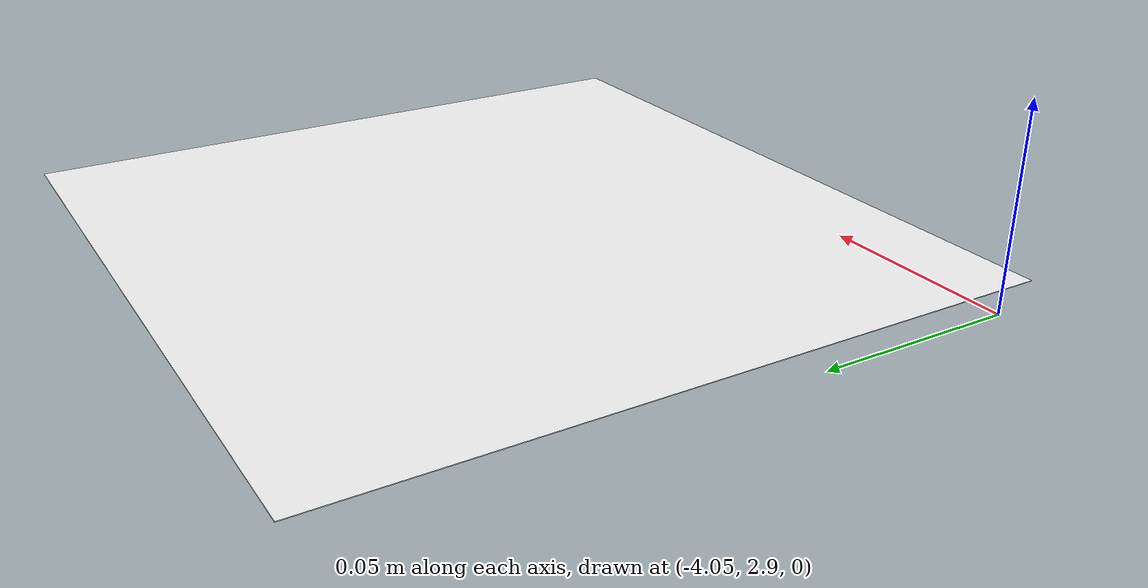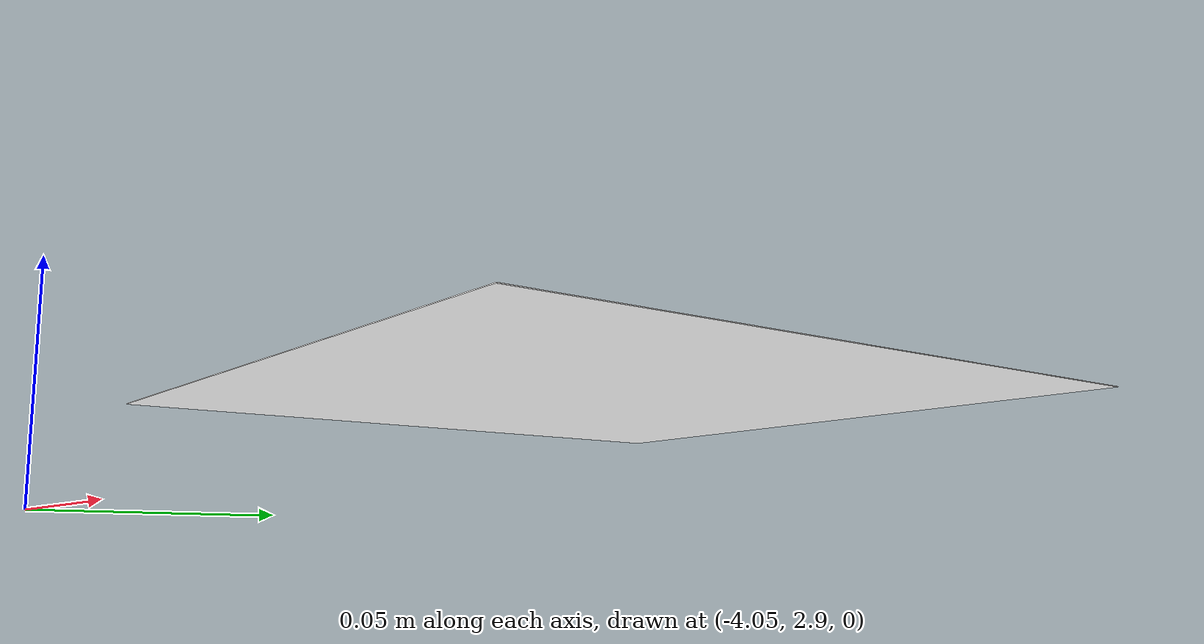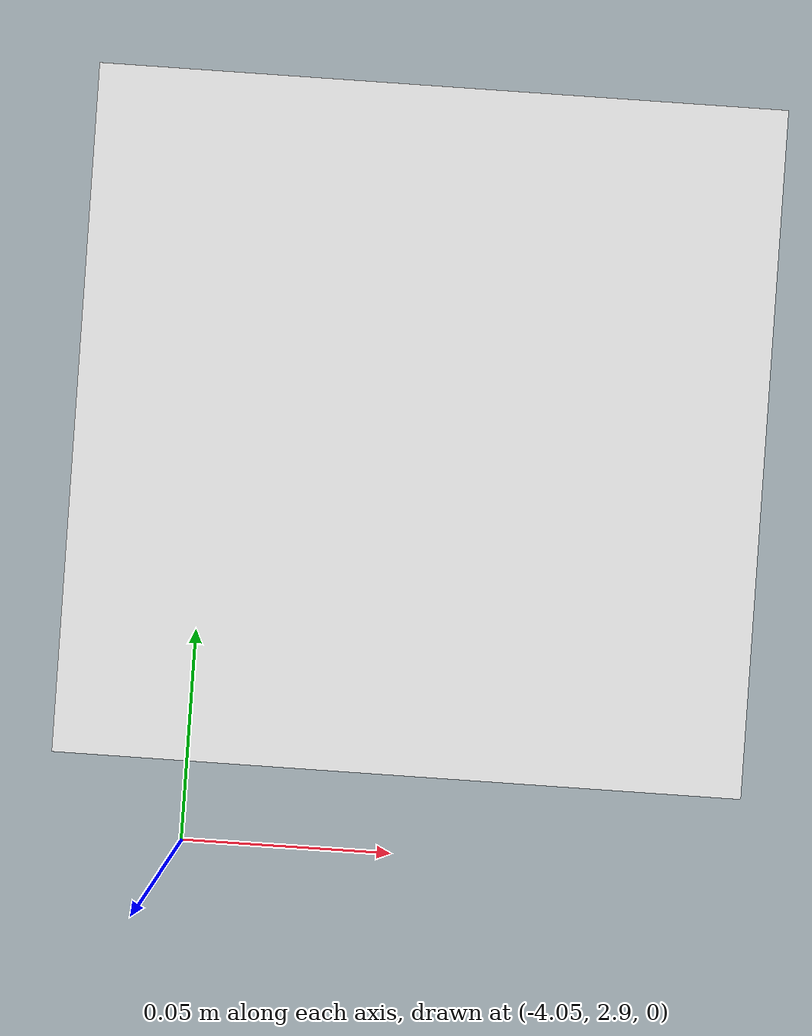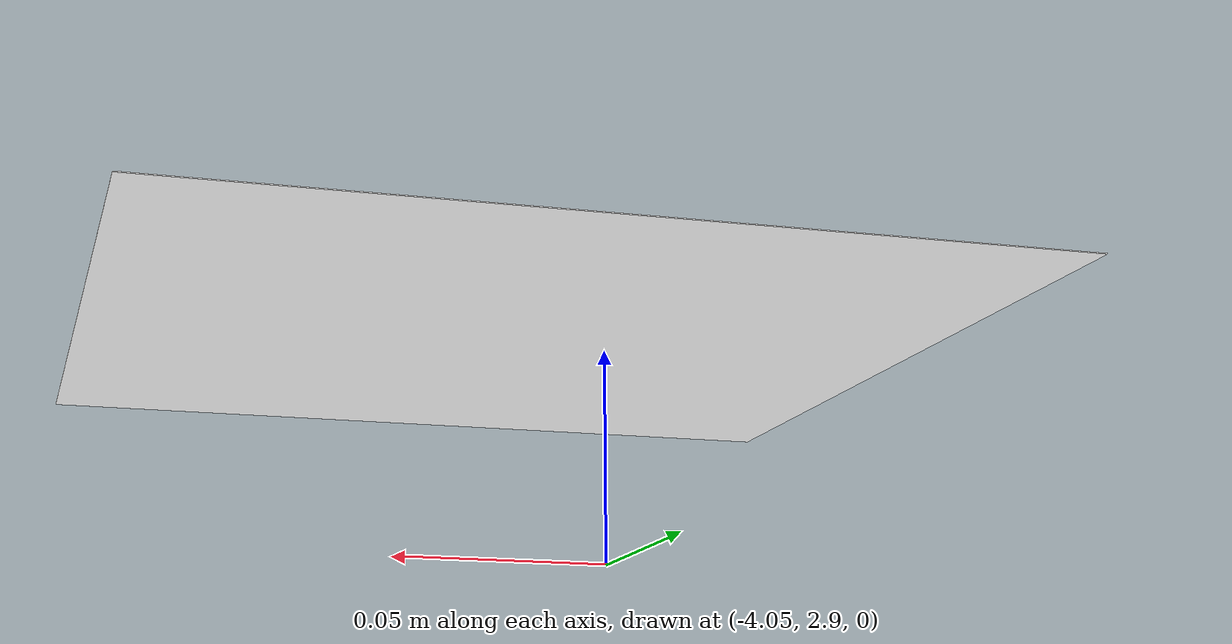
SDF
<?xml version="1.0" encoding="UTF-8"?>
<sdf version='1.9'>
  <model name='arucotag_400'>
    <static>true</static>
    <pose>-4 3 0.025 0 0 0</pose>
    <link name='base'>
      <visual name='base_visual'>
        <geometry>
          <plane>
            <normal>0 0 1</normal>
            <size>0.15 0.15</size>
          </plane>
        </geometry>
        <material>
          <diffuse>1 1 1 1</diffuse>
          <specular>0.4 0.4 0.4 1</specular>
          <pbr>
            <metal>
              <albedo_map>model://arucotag_400/400.png</albedo_map>
            </metal>
          </pbr>
        </material>
      </visual>
    </link>
  </model>
</sdf>
